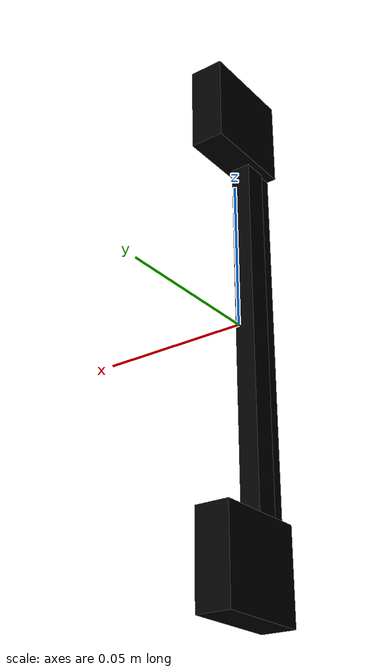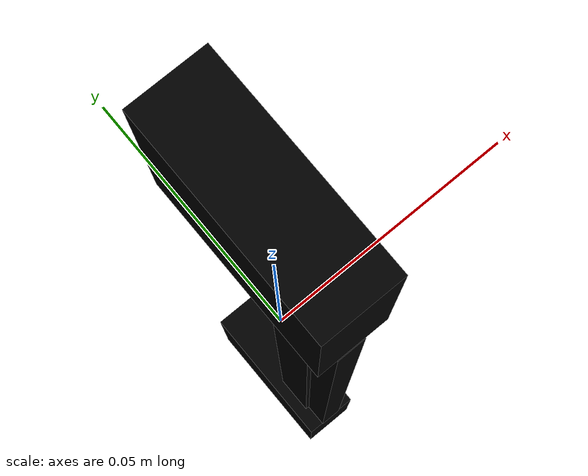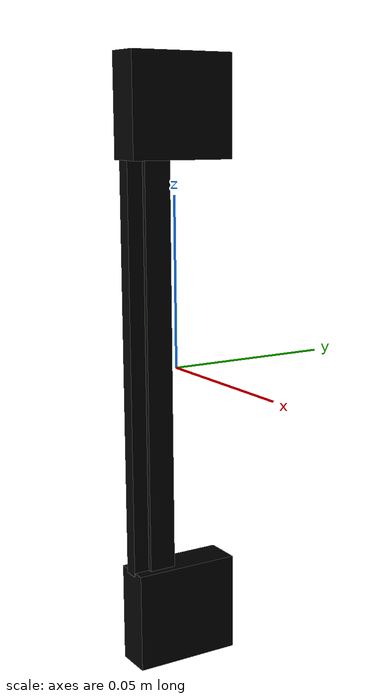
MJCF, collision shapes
<?xml version="1.0" ?>
<mujoco model="model">
    <compiler angle="radian"/>
    <asset>
        <mesh file="visuals/CabinetHandle008.obj" name="mesh"/>
        <texture file="visuals/T_BC001.png" name="tex" type="2d"/>
        <material name="mat" rgba="1 1 1 1.0" texture="tex" shininess="-1023.0" specular="0.7"/>
    </asset>
    <default>
        <default class="visual">
            <geom conaffinity="0" contype="0" group="1" type="mesh"/>
        </default>
        <default class="collision">
            <geom group="0" rgba="0 0 0 0"/>
        </default>
        <default class="spawn">
            <geom group="0" rgba="0 0 0 0" contype="0" conaffinity="0"/>
            <site group="0" rgba="0 0 0 0"/>
        </default>
    </default>
    <worldbody>
        <body>
            <body name="object">
                <geom mesh="mesh" type="mesh" solimp="0.998 0.998 0.001" solref="0.001 1" density="100" friction="0.95 0.3 0.1" class="visual" material="mat"/>
                <geom class="collision" type="box" pos="-0.00015163334319368005 3.080213718931191e-05 0.07467527687549591" size="0.005627179052680731 0.015856904909014702 0.014748484827578068" quat="1.0 0.0 0.0 0.0" name="handle_connector"/>
                <geom class="collision" type="box" pos="-0.00015163334319368005 3.080213718931191e-05 -0.07461473345756531" size="0.005627179052680731 0.015856904909014702 0.014748484827578068" quat="1.0 0.0 0.0 0.0"/>
                <geom class="collision" type="box" pos="-0.00015163334319368005 -0.007118581794202328 0.0004630468029063195" size="0.003262025536969304 0.003999598789960146 0.060499440878629684" quat="1.0 0.0 0.0 0.0"/>
                <geom class="collision" type="box" pos="-0.0003878959978464991 -0.013559379614889622 -0.0005074074724689126" size="0.002267927397042513 0.002373497001826763 0.060499440878629684" quat="1.0 0.0 0.0 0.0"/>
            </body>
        </body>
    </worldbody>
    <actuator/>
</mujoco>
